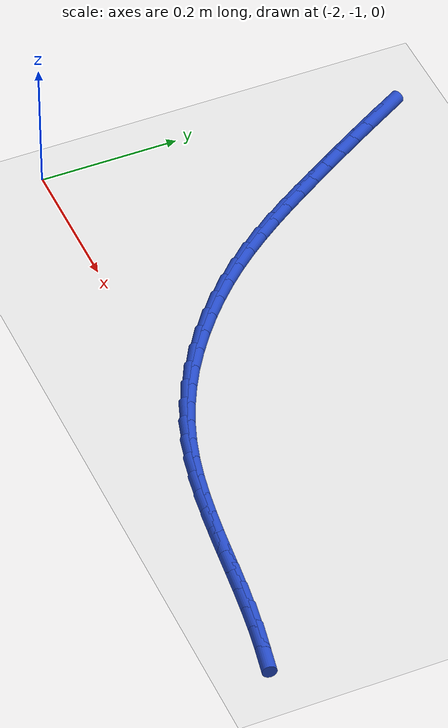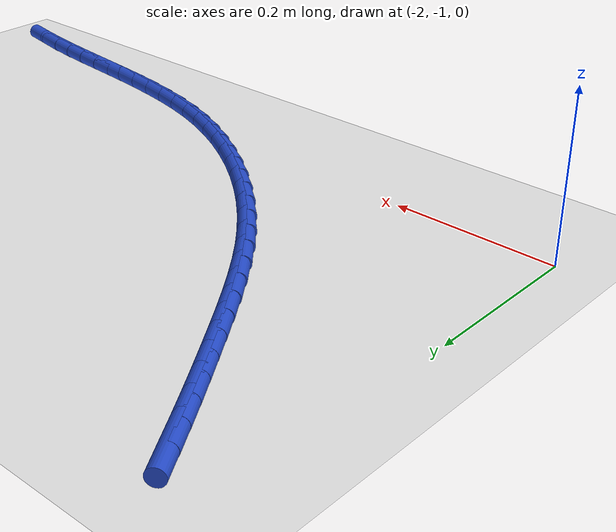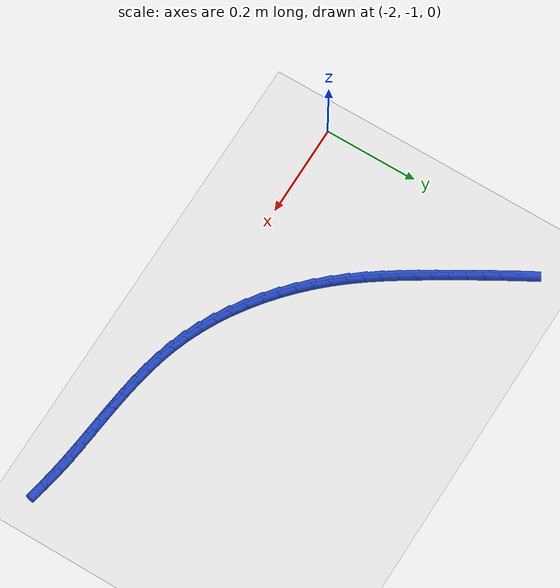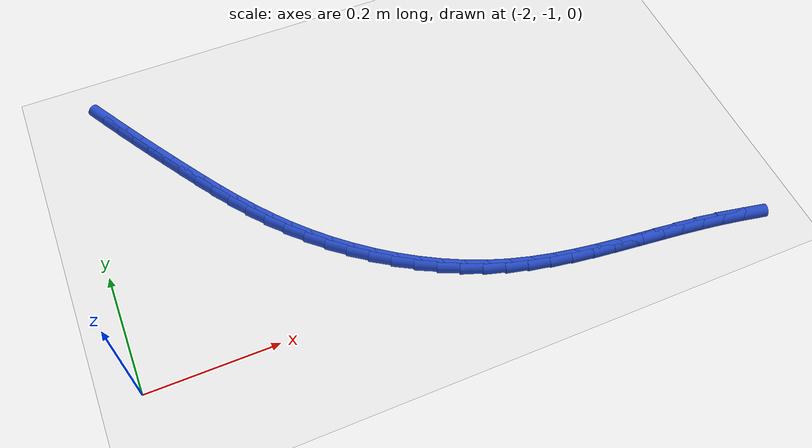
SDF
<sdf version="1.6">
 <world name="default">
  <model name="ground_plane">
   <static>1</static>
   <link name="link">
    <collision name="collision">
     <geometry><plane><normal>0 0 1</normal><size>100 100</size></plane></geometry>
     <surface><friction><ode><mu>100</mu><mu2>50</mu2></ode></friction></surface>
    </collision>
    <visual name="visual">
     <cast_shadows>0</cast_shadows>
     <geometry><plane><normal>0 0 1</normal><size>100 100</size></plane></geometry>
     <material>
      <script><uri>file://media/materials/scripts/gazebo.material</uri><name>Gazebo/WhiteGlow</name></script>
     </material>
    </visual>
   </link>
  </model>
  <model name="line">
   <link name="link_117">
    <pose>-1.9295110386717254 -0.5182451663959997 0.01 0 1.57 -1.0467822997465561</pose>
    <collision name="collision">
     <geometry><cylinder><radius>0.01</radius><length>0.08</length></cylinder></geometry>
    </collision>
    <visual name="visual">
     <material>
      <script><name>Gazebo/Blue</name><uri>file://media/materials/scripts/gazebo.material</uri></script>
     </material>
     <geometry><cylinder><radius>0.01</radius><length>0.08</length></cylinder></geometry>
    </visual>
   </link>
   <link name="link_118">
    <pose>-1.9126738371370995 -0.5473801083204457 0.01 0 1.57 -1.037289502778298</pose>
    <collision name="collision">
     <geometry><cylinder><radius>0.01</radius><length>0.08</length></cylinder></geometry>
    </collision>
    <visual name="visual">
     <material>
      <script><name>Gazebo/Blue</name><uri>file://media/materials/scripts/gazebo.material</uri></script>
     </material>
     <geometry><cylinder><radius>0.01</radius><length>0.08</length></cylinder></geometry>
    </visual>
   </link>
   <link name="link_119">
    <pose>-1.8955645700322756 -0.5763475693191261 0.01 0 1.57 -1.0290526084333367</pose>
    <collision name="collision">
     <geometry><cylinder><radius>0.01</radius><length>0.08</length></cylinder></geometry>
    </collision>
    <visual name="visual">
     <material>
      <script><name>Gazebo/Blue</name><uri>file://media/materials/scripts/gazebo.material</uri></script>
     </material>
     <geometry><cylinder><radius>0.01</radius><length>0.08</length></cylinder></geometry>
    </visual>
   </link>
   <link name="link_120">
    <pose>-1.8782195858099335 -0.6051692973410946 0.01 0 1.57 -1.0220733220512235</pose>
    <collision name="collision">
     <geometry><cylinder><radius>0.01</radius><length>0.08</length></cylinder></geometry>
    </collision>
    <visual name="visual">
     <material>
      <script><name>Gazebo/Blue</name><uri>file://media/materials/scripts/gazebo.material</uri></script>
     </material>
     <geometry><cylinder><radius>0.01</radius><length>0.08</length></cylinder></geometry>
    </visual>
   </link>
   <link name="link_121">
    <pose>-1.8606752329227492 -0.6338670403354041 0.01 0 1.57 -1.0163503802320824</pose>
    <collision name="collision">
     <geometry><cylinder><radius>0.01</radius><length>0.08</length></cylinder></geometry>
    </collision>
    <visual name="visual">
     <material>
      <script><name>Gazebo/Blue</name><uri>file://media/materials/scripts/gazebo.material</uri></script>
     </material>
     <geometry><cylinder><radius>0.01</radius><length>0.08</length></cylinder></geometry>
    </visual>
   </link>
   <link name="link_122">
    <pose>-1.8429677999303127 -0.6624625081757184 0.01 0 1.57 -1.009907135855747</pose>
    <collision name="collision">
     <geometry><cylinder><radius>0.01</radius><length>0.08</length></cylinder></geometry>
    </collision>
    <visual name="visual">
     <material>
      <script><name>Gazebo/Blue</name><uri>file://media/materials/scripts/gazebo.material</uri></script>
     </material>
     <geometry><cylinder><radius>0.01</radius><length>0.08</length></cylinder></geometry>
    </visual>
   </link>
   <link name="link_123">
    <pose>-1.8250774626920787 -0.6909417386246187 0.01 0 1.57 -0.9970980933867648</pose>
    <collision name="collision">
     <geometry><cylinder><radius>0.01</radius><length>0.08</length></cylinder></geometry>
    </collision>
    <visual name="visual">
     <material>
      <script><name>Gazebo/Blue</name><uri>file://media/materials/scripts/gazebo.material</uri></script>
     </material>
     <geometry><cylinder><radius>0.01</radius><length>0.08</length></cylinder></geometry>
    </visual>
   </link>
   <link name="link_124">
    <pose>-1.8068241775696832 -0.719188914290498 0.01 0 1.57 -0.9769271978664638</pose>
    <collision name="collision">
     <geometry><cylinder><radius>0.01</radius><length>0.08</length></cylinder></geometry>
    </collision>
    <visual name="visual">
     <material>
      <script><name>Gazebo/Blue</name><uri>file://media/materials/scripts/gazebo.material</uri></script>
     </material>
     <geometry><cylinder><radius>0.01</radius><length>0.08</length></cylinder></geometry>
    </visual>
   </link>
   <link name="link_125">
    <pose>-1.787999490337133 -0.7470701565293894 0.01 0 1.57 -0.9494261568157288</pose>
    <collision name="collision">
     <geometry><cylinder><radius>0.01</radius><length>0.08</length></cylinder></geometry>
    </collision>
    <visual name="visual">
     <material>
      <script><name>Gazebo/Blue</name><uri>file://media/materials/scripts/gazebo.material</uri></script>
     </material>
     <geometry><cylinder><radius>0.01</radius><length>0.08</length></cylinder></geometry>
    </visual>
   </link>
   <link name="link_126">
    <pose>-1.7683949467684381 -0.7744515866973254 0.01 0 1.57 -0.9146858003304484</pose>
    <collision name="collision">
     <geometry><cylinder><radius>0.01</radius><length>0.08</length></cylinder></geometry>
    </collision>
    <visual name="visual">
     <material>
      <script><name>Gazebo/Blue</name><uri>file://media/materials/scripts/gazebo.material</uri></script>
     </material>
     <geometry><cylinder><radius>0.01</radius><length>0.08</length></cylinder></geometry>
    </visual>
   </link>
   <link name="link_127">
    <pose>-1.7478020926376066 -0.8011993261503392 0.01 0 1.57 -0.8729049681676332</pose>
    <collision name="collision">
     <geometry><cylinder><radius>0.01</radius><length>0.08</length></cylinder></geometry>
    </collision>
    <visual name="visual">
     <material>
      <script><name>Gazebo/Blue</name><uri>file://media/materials/scripts/gazebo.material</uri></script>
     </material>
     <geometry><cylinder><radius>0.01</radius><length>0.08</length></cylinder></geometry>
    </visual>
   </link>
   <link name="link_128">
    <pose>-1.7260127752011996 -0.8271795018439663 0.01 0 1.57 -0.8261755470087837</pose>
    <collision name="collision">
     <geometry><cylinder><radius>0.01</radius><length>0.08</length></cylinder></geometry>
    </collision>
    <visual name="visual">
     <material>
      <script><name>Gazebo/Blue</name><uri>file://media/materials/scripts/gazebo.material</uri></script>
     </material>
     <geometry><cylinder><radius>0.01</radius><length>0.08</length></cylinder></geometry>
    </visual>
   </link>
   <link name="link_129">
    <pose>-1.7028988704324342 -0.8522597271250716 0.01 0 1.57 -0.7786247436310746</pose>
    <collision name="collision">
     <geometry><cylinder><radius>0.01</radius><length>0.08</length></cylinder></geometry>
    </collision>
    <visual name="visual">
     <material>
      <script><name>Gazebo/Blue</name><uri>file://media/materials/scripts/gazebo.material</uri></script>
     </material>
     <geometry><cylinder><radius>0.01</radius><length>0.08</length></cylinder></geometry>
    </visual>
   </link>
   <link name="link_130">
    <pose>-1.6785194582345873 -0.8763110923211559 0.01 0 1.57 -0.7304515743878933</pose>
    <collision name="collision">
     <geometry><cylinder><radius>0.01</radius><length>0.08</length></cylinder></geometry>
    </collision>
    <visual name="visual">
     <material>
      <script><name>Gazebo/Blue</name><uri>file://media/materials/scripts/gazebo.material</uri></script>
     </material>
     <geometry><cylinder><radius>0.01</radius><length>0.08</length></cylinder></geometry>
    </visual>
   </link>
   <link name="link_131">
    <pose>-1.6529603455194057 -0.8992051841664526 0.01 0 1.57 -0.681249769884784</pose>
    <collision name="collision">
     <geometry><cylinder><radius>0.01</radius><length>0.08</length></cylinder></geometry>
    </collision>
    <visual name="visual">
     <material>
      <script><name>Gazebo/Blue</name><uri>file://media/materials/scripts/gazebo.material</uri></script>
     </material>
     <geometry><cylinder><radius>0.01</radius><length>0.08</length></cylinder></geometry>
    </visual>
   </link>
   <link name="link_132">
    <pose>-1.626307339198635 -0.9208135893951942 0.01 0 1.57 -0.6306180243736038</pose>
    <collision name="collision">
     <geometry><cylinder><radius>0.01</radius><length>0.08</length></cylinder></geometry>
    </collision>
    <visual name="visual">
     <material>
      <script><name>Gazebo/Blue</name><uri>file://media/materials/scripts/gazebo.material</uri></script>
     </material>
     <geometry><cylinder><radius>0.01</radius><length>0.08</length></cylinder></geometry>
    </visual>
   </link>
   <link name="link_133">
    <pose>-1.5986462461840194 -0.9410078947416131 0.01 0 1.57 -0.5781586911541705</pose>
    <collision name="collision">
     <geometry><cylinder><radius>0.01</radius><length>0.08</length></cylinder></geometry>
    </collision>
    <visual name="visual">
     <material>
      <script><name>Gazebo/Blue</name><uri>file://media/materials/scripts/gazebo.material</uri></script>
     </material>
     <geometry><cylinder><radius>0.01</radius><length>0.08</length></cylinder></geometry>
    </visual>
   </link>
   <link name="link_134">
    <pose>-1.5700628733873048 -0.9596596869399421 0.01 0 1.57 -0.5234792044064821</pose>
    <collision name="collision">
     <geometry><cylinder><radius>0.01</radius><length>0.08</length></cylinder></geometry>
    </collision>
    <visual name="visual">
     <material>
      <script><name>Gazebo/Blue</name><uri>file://media/materials/scripts/gazebo.material</uri></script>
     </material>
     <geometry><cylinder><radius>0.01</radius><length>0.08</length></cylinder></geometry>
    </visual>
   </link>
   <link name="link_135">
    <pose>-1.540643027720236 -0.9766405527244135 0.01 0 1.57 -0.4661970484531134</pose>
    <collision name="collision">
     <geometry><cylinder><radius>0.01</radius><length>0.08</length></cylinder></geometry>
    </collision>
    <visual name="visual">
     <material>
      <script><name>Gazebo/Blue</name><uri>file://media/materials/scripts/gazebo.material</uri></script>
     </material>
     <geometry><cylinder><radius>0.01</radius><length>0.08</length></cylinder></geometry>
    </visual>
   </link>
   <link name="link_136">
    <pose>-1.5104725160945582 -0.9918220788292604 0.01 0 1.57 -0.4059492611335825</pose>
    <collision name="collision">
     <geometry><cylinder><radius>0.01</radius><length>0.08</length></cylinder></geometry>
    </collision>
    <visual name="visual">
     <material>
      <script><name>Gazebo/Blue</name><uri>file://media/materials/scripts/gazebo.material</uri></script>
     </material>
     <geometry><cylinder><radius>0.01</radius><length>0.08</length></cylinder></geometry>
    </visual>
   </link>
   <link name="link_137">
    <pose>-1.479637145422017 -1.005075851988715 0.01 0 1.57 -0.3425600143390648</pose>
    <collision name="collision">
     <geometry><cylinder><radius>0.01</radius><length>0.08</length></cylinder></geometry>
    </collision>
    <visual name="visual">
     <material>
      <script><name>Gazebo/Blue</name><uri>file://media/materials/scripts/gazebo.material</uri></script>
     </material>
     <geometry><cylinder><radius>0.01</radius><length>0.08</length></cylinder></geometry>
    </visual>
   </link>
   <link name="link_138">
    <pose>-1.448222347172644 -1.0162789924219682 0.01 0 1.57 -0.281059700131209</pose>
    <collision name="collision">
     <geometry><cylinder><radius>0.01</radius><length>0.08</length></cylinder></geometry>
    </collision>
    <visual name="visual">
     <material>
      <script><name>Gazebo/Blue</name><uri>file://media/materials/scripts/gazebo.material</uri></script>
     </material>
     <geometry><cylinder><radius>0.01</radius><length>0.08</length></cylinder></geometry>
    </visual>
   </link>
   <link name="link_139">
    <pose>-1.4163009226352279 -1.0254947715277447 0.01 0 1.57 -0.22820127750967867</pose>
    <collision name="collision">
     <geometry><cylinder><radius>0.01</radius><length>0.08</length></cylinder></geometry>
    </collision>
    <visual name="visual">
     <material>
      <script><name>Gazebo/Blue</name><uri>file://media/materials/scripts/gazebo.material</uri></script>
     </material>
     <geometry><cylinder><radius>0.01</radius><length>0.08</length></cylinder></geometry>
    </visual>
   </link>
   <link name="link_140">
    <pose>-1.3839303201832691 -1.0330127411702599 0.01 0 1.57 -0.18476573917758143</pose>
    <collision name="collision">
     <geometry><cylinder><radius>0.01</radius><length>0.08</length></cylinder></geometry>
    </collision>
    <visual name="visual">
     <material>
      <script><name>Gazebo/Blue</name><uri>file://media/materials/scripts/gazebo.material</uri></script>
     </material>
     <geometry><cylinder><radius>0.01</radius><length>0.08</length></cylinder></geometry>
    </visual>
   </link>
   <link name="link_141">
    <pose>-1.3511670616881035 -1.039136108557827 0.01 0 1.57 -0.15087089460864006</pose>
    <collision name="collision">
     <geometry><cylinder><radius>0.01</radius><length>0.08</length></cylinder></geometry>
    </collision>
    <visual name="visual">
     <material>
      <script><name>Gazebo/Blue</name><uri>file://media/materials/scripts/gazebo.material</uri></script>
     </material>
     <geometry><cylinder><radius>0.01</radius><length>0.08</length></cylinder></geometry>
    </visual>
   </link>
   <link name="link_142">
    <pose>-1.3180676690210642 -1.0441680808987588 0.01 0 1.57 -0.12646085934477894</pose>
    <collision name="collision">
     <geometry><cylinder><radius>0.01</radius><length>0.08</length></cylinder></geometry>
    </collision>
    <visual name="visual">
     <material>
      <script><name>Gazebo/Blue</name><uri>file://media/materials/scripts/gazebo.material</uri></script>
     </material>
     <geometry><cylinder><radius>0.01</radius><length>0.08</length></cylinder></geometry>
    </visual>
   </link>
   <link name="link_143">
    <pose>-1.284688664053486 -1.0484118654013677 0.01 0 1.57 -0.11139907612547251</pose>
    <collision name="collision">
     <geometry><cylinder><radius>0.01</radius><length>0.08</length></cylinder></geometry>
    </collision>
    <visual name="visual">
     <material>
      <script><name>Gazebo/Blue</name><uri>file://media/materials/scripts/gazebo.material</uri></script>
     </material>
     <geometry><cylinder><radius>0.01</radius><length>0.08</length></cylinder></geometry>
    </visual>
   </link>
   <link name="link_144">
    <pose>-1.251086568656705 -1.0521706692739672 0.01 0 1.57 -0.10553396361830376</pose>
    <collision name="collision">
     <geometry><cylinder><radius>0.01</radius><length>0.08</length></cylinder></geometry>
    </collision>
    <visual name="visual">
     <material>
      <script><name>Gazebo/Blue</name><uri>file://media/materials/scripts/gazebo.material</uri></script>
     </material>
     <geometry><cylinder><radius>0.01</radius><length>0.08</length></cylinder></geometry>
    </visual>
   </link>
   <link name="link_145">
    <pose>-1.2173179047020544 -1.0557476997248696 0.01 0 1.57 -0.10873719977391681</pose>
    <collision name="collision">
     <geometry><cylinder><radius>0.01</radius><length>0.08</length></cylinder></geometry>
    </collision>
    <visual name="visual">
     <material>
      <script><name>Gazebo/Blue</name><uri>file://media/materials/scripts/gazebo.material</uri></script>
     </material>
     <geometry><cylinder><radius>0.01</radius><length>0.08</length></cylinder></geometry>
    </visual>
   </link>
   <link name="link_146">
    <pose>-1.1834391940608704 -1.0594461639623882 0.01 0 1.57 -0.1209172034697573</pose>
    <collision name="collision">
     <geometry><cylinder><radius>0.01</radius><length>0.08</length></cylinder></geometry>
    </collision>
    <visual name="visual">
     <material>
      <script><name>Gazebo/Blue</name><uri>file://media/materials/scripts/gazebo.material</uri></script>
     </material>
     <geometry><cylinder><radius>0.01</radius><length>0.08</length></cylinder></geometry>
    </visual>
   </link>
   <link name="link_147">
    <pose>-1.1495069586044873 -1.0635692691948353 0.01 0 1.57 -0.14201025870153647</pose>
    <collision name="collision">
     <geometry><cylinder><radius>0.01</radius><length>0.08</length></cylinder></geometry>
    </collision>
    <visual name="visual">
     <material>
      <script><name>Gazebo/Blue</name><uri>file://media/materials/scripts/gazebo.material</uri></script>
     </material>
     <geometry><cylinder><radius>0.01</radius><length>0.08</length></cylinder></geometry>
    </visual>
   </link>
   <link name="link_148">
    <pose>-1.1155777202042394 -1.0684202226305244 0.01 0 1.57 -0.17104833366839356</pose>
    <collision name="collision">
     <geometry><cylinder><radius>0.01</radius><length>0.08</length></cylinder></geometry>
    </collision>
    <visual name="visual">
     <material>
      <script><name>Gazebo/Blue</name><uri>file://media/materials/scripts/gazebo.material</uri></script>
     </material>
     <geometry><cylinder><radius>0.01</radius><length>0.08</length></cylinder></geometry>
    </visual>
   </link>
   <link name="link_149">
    <pose>-1.0817067514297443 -1.0742709664470844 0.01 0 1.57 -0.19489555581693316</pose>
    <collision name="collision">
     <geometry><cylinder><radius>0.01</radius><length>0.08</length></cylinder></geometry>
    </collision>
    <visual name="visual">
     <material>
      <script><name>Gazebo/Blue</name><uri>file://media/materials/scripts/gazebo.material</uri></script>
     </material>
     <geometry><cylinder><radius>0.01</radius><length>0.08</length></cylinder></geometry>
    </visual>
   </link>
  </model>
 </world>
</sdf>
